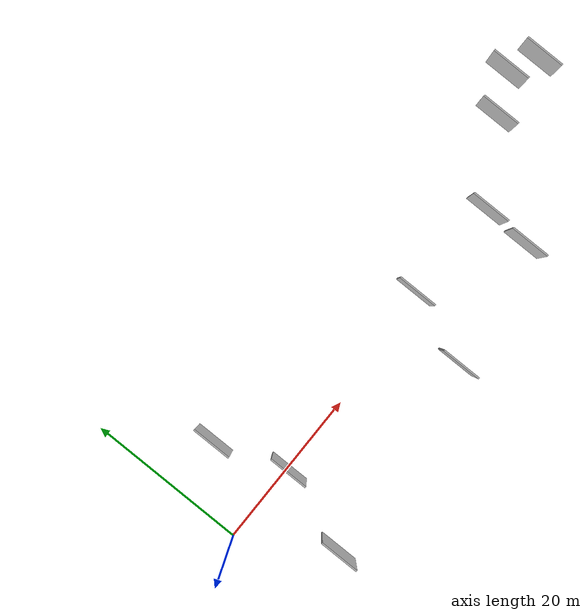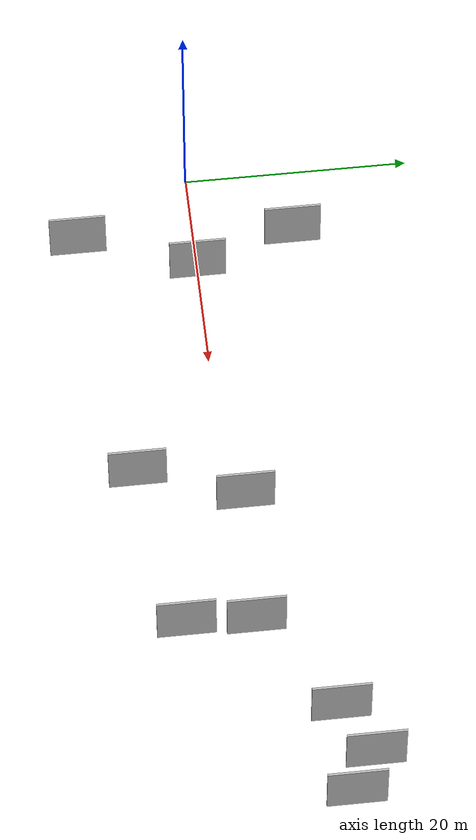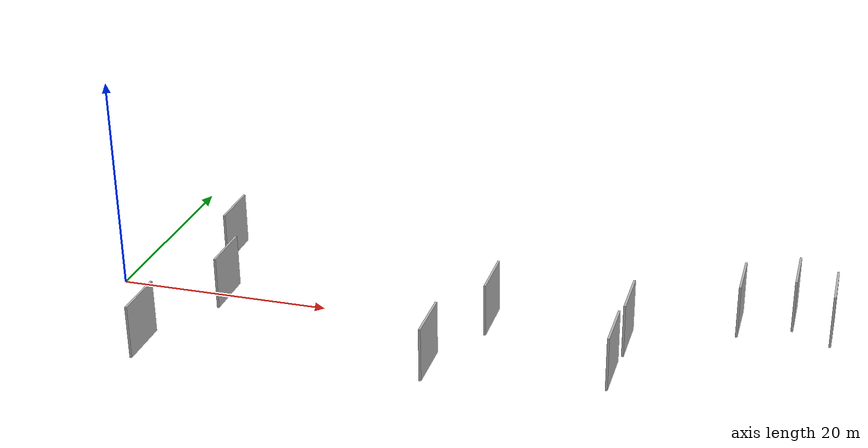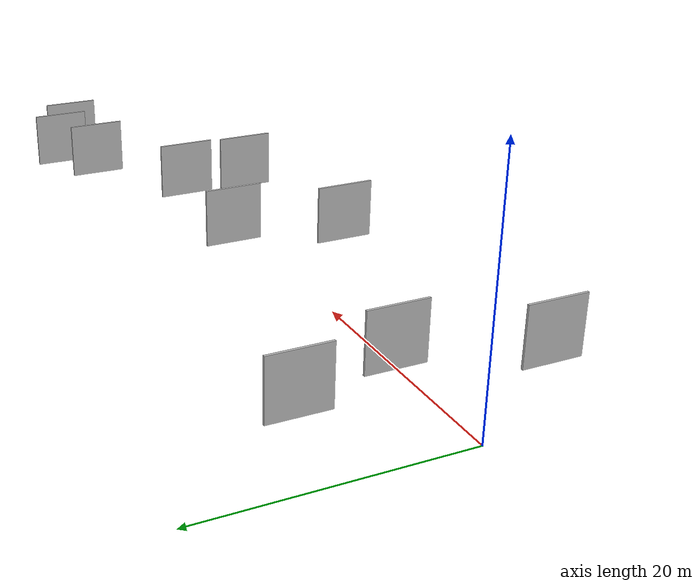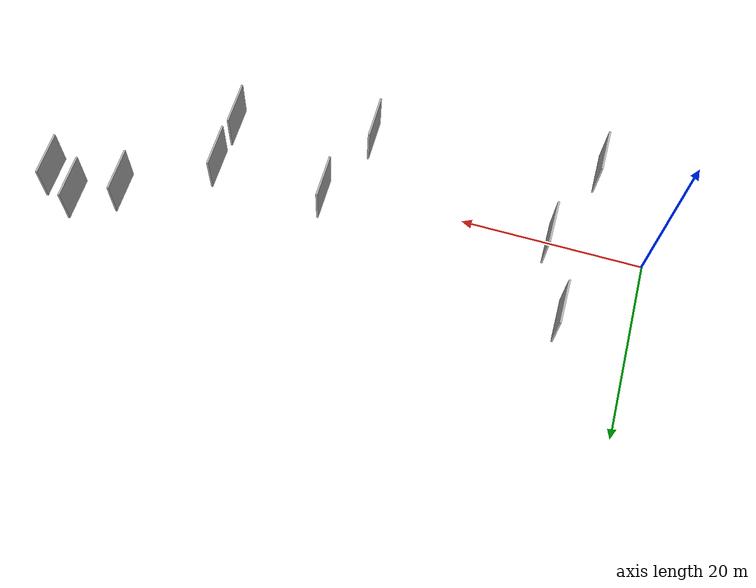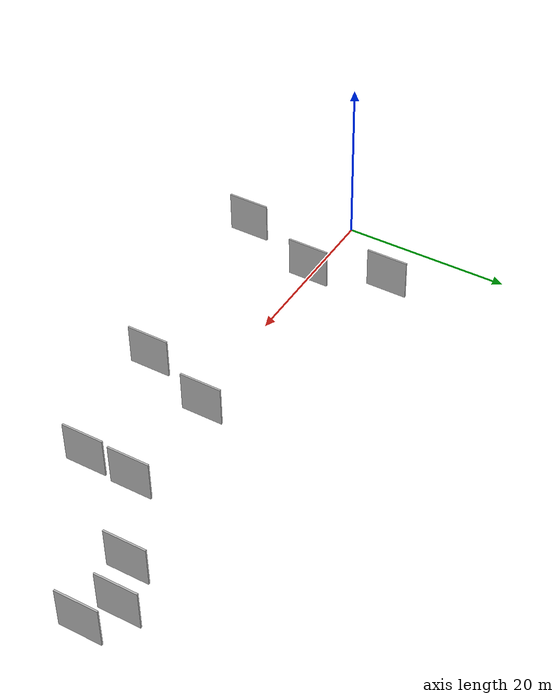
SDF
<sdf version="1.6">
 <world name="default">
  <scene>
   <sky><clouds><speed>12</speed></clouds></sky>
   <ambient>0.4 0.4 0.4 1</ambient>
   <background>0.7 0.7 0.7 1</background>
   <shadows>1</shadows>
  </scene>
  <gravity>0 0 -9.8066</gravity>
  <magnetic_field>6e-06 2.3e-05 -4.2e-05</magnetic_field>
  <physics default="0" name="default_physics" type="ode">
   <ode>
    <solver>
     <type>quick</type>
     <iters>10</iters>
     <sor>1.0</sor>
     <use_dynamic_moi_rescaling>0</use_dynamic_moi_rescaling>
    </solver>
    <constraints>
     <cfm>0</cfm>
     <erp>0.2</erp>
     <contact_max_correcting_vel>100</contact_max_correcting_vel>
     <contact_surface_layer>0.001</contact_surface_layer>
    </constraints>
   </ode>
   <max_step_size>0.004</max_step_size>
   <real_time_factor>1</real_time_factor>
   <real_time_update_rate>250</real_time_update_rate>
  </physics>
  <light name="sun" type="directional">
   <pose>0 0 10 0 0 0</pose>
   <diffuse>0.8 0.8 0.8 1</diffuse>
   <specular>0.2 0.2 0.2 1</specular>
   <attenuation>
    <range>1000</range>
    <constant>0.9</constant>
    <linear>0.01</linear>
    <quadratic>0.001</quadratic>
   </attenuation>
   <direction>-0.5 0.1 -0.9</direction>
  </light>
  <model name="grey_wall_1">
   <static>1</static>
   <pose>32.1982 -7.3972 0.0 0.000000 0.000000 1.570796</pose>
   <link name="link">
    <pose>0 0 2.50 0 0 0</pose>
    <collision name="collision"><geometry><box><size>5.00 0.2 5.00</size></box></geometry></collision>
    <visual name="visual">
     <cast_shadows>0</cast_shadows>
     <geometry><box><size>5.00 0.2 5.00</size></box></geometry>
     <material>
      <script>
       <uri>model://HANNAS_wall/materials/scripts</uri>
       <uri>model://HANNAS_wall/materials/textures</uri>
       <name>vrc/HANNAS_wall</name>
      </script>
     </material>
    </visual>
   </link>
  </model>
  <model name="grey_wall_2">
   <static>1</static>
   <pose>65.3441 7.3840 0.0 0.000000 0.000000 1.570796</pose>
   <link name="link">
    <pose>0 0 2.50 0 0 0</pose>
    <collision name="collision"><geometry><box><size>5.00 0.2 5.00</size></box></geometry></collision>
    <visual name="visual">
     <cast_shadows>0</cast_shadows>
     <geometry><box><size>5.00 0.2 5.00</size></box></geometry>
     <material>
      <script>
       <uri>model://HANNAS_wall/materials/scripts</uri>
       <uri>model://HANNAS_wall/materials/textures</uri>
       <name>vrc/HANNAS_wall</name>
      </script>
     </material>
    </visual>
   </link>
  </model>
  <model name="grey_wall_3">
   <static>1</static>
   <pose>47.7189 -4.7763 0.0 0.000000 0.000000 1.570796</pose>
   <link name="link">
    <pose>0 0 2.50 0 0 0</pose>
    <collision name="collision"><geometry><box><size>5.00 0.2 5.00</size></box></geometry></collision>
    <visual name="visual">
     <cast_shadows>0</cast_shadows>
     <geometry><box><size>5.00 0.2 5.00</size></box></geometry>
     <material>
      <script>
       <uri>model://HANNAS_wall/materials/scripts</uri>
       <uri>model://HANNAS_wall/materials/textures</uri>
       <name>vrc/HANNAS_wall</name>
      </script>
     </material>
    </visual>
   </link>
  </model>
  <model name="grey_wall_4">
   <static>1</static>
   <pose>6.8140 -10.3158 0.0 0.000000 0.000000 1.570796</pose>
   <link name="link">
    <pose>0 0 2.50 0 0 0</pose>
    <collision name="collision"><geometry><box><size>5.00 0.2 5.00</size></box></geometry></collision>
    <visual name="visual">
     <cast_shadows>0</cast_shadows>
     <geometry><box><size>5.00 0.2 5.00</size></box></geometry>
     <material>
      <script>
       <uri>model://HANNAS_wall/materials/scripts</uri>
       <uri>model://HANNAS_wall/materials/textures</uri>
       <name>vrc/HANNAS_wall</name>
      </script>
     </material>
    </visual>
   </link>
  </model>
  <model name="grey_wall_5">
   <static>1</static>
   <pose>48.0214 1.0848 0.0 0.000000 0.000000 1.570796</pose>
   <link name="link">
    <pose>0 0 2.50 0 0 0</pose>
    <collision name="collision"><geometry><box><size>5.00 0.2 5.00</size></box></geometry></collision>
    <visual name="visual">
     <cast_shadows>0</cast_shadows>
     <geometry><box><size>5.00 0.2 5.00</size></box></geometry>
     <material>
      <script>
       <uri>model://HANNAS_wall/materials/scripts</uri>
       <uri>model://HANNAS_wall/materials/textures</uri>
       <name>vrc/HANNAS_wall</name>
      </script>
     </material>
    </visual>
   </link>
  </model>
  <model name="grey_wall_6">
   <static>1</static>
   <pose>35.4953 1.5428 0.0 0.000000 0.000000 1.570796</pose>
   <link name="link">
    <pose>0 0 2.50 0 0 0</pose>
    <collision name="collision"><geometry><box><size>5.00 0.2 5.00</size></box></geometry></collision>
    <visual name="visual">
     <cast_shadows>0</cast_shadows>
     <geometry><box><size>5.00 0.2 5.00</size></box></geometry>
     <material>
      <script>
       <uri>model://HANNAS_wall/materials/scripts</uri>
       <uri>model://HANNAS_wall/materials/textures</uri>
       <name>vrc/HANNAS_wall</name>
      </script>
     </material>
    </visual>
   </link>
  </model>
  <model name="grey_wall_7">
   <static>1</static>
   <pose>57.1895 7.0918 0.0 0.000000 0.000000 1.570796</pose>
   <link name="link">
    <pose>0 0 2.50 0 0 0</pose>
    <collision name="collision"><geometry><box><size>5.00 0.2 5.00</size></box></geometry></collision>
    <visual name="visual">
     <cast_shadows>0</cast_shadows>
     <geometry><box><size>5.00 0.2 5.00</size></box></geometry>
     <material>
      <script>
       <uri>model://HANNAS_wall/materials/scripts</uri>
       <uri>model://HANNAS_wall/materials/textures</uri>
       <name>vrc/HANNAS_wall</name>
      </script>
     </material>
    </visual>
   </link>
  </model>
  <model name="grey_wall_8">
   <static>1</static>
   <pose>10.5177 0.0256 0.0 0.000000 0.000000 1.570796</pose>
   <link name="link">
    <pose>0 0 2.50 0 0 0</pose>
    <collision name="collision"><geometry><box><size>5.00 0.2 5.00</size></box></geometry></collision>
    <visual name="visual">
     <cast_shadows>0</cast_shadows>
     <geometry><box><size>5.00 0.2 5.00</size></box></geometry>
     <material>
      <script>
       <uri>model://HANNAS_wall/materials/scripts</uri>
       <uri>model://HANNAS_wall/materials/textures</uri>
       <name>vrc/HANNAS_wall</name>
      </script>
     </material>
    </visual>
   </link>
  </model>
  <model name="grey_wall_9">
   <static>1</static>
   <pose>7.6743 8.8062 0.0 0.000000 0.000000 1.570796</pose>
   <link name="link">
    <pose>0 0 2.50 0 0 0</pose>
    <collision name="collision"><geometry><box><size>5.00 0.2 5.00</size></box></geometry></collision>
    <visual name="visual">
     <cast_shadows>0</cast_shadows>
     <geometry><box><size>5.00 0.2 5.00</size></box></geometry>
     <material>
      <script>
       <uri>model://HANNAS_wall/materials/scripts</uri>
       <uri>model://HANNAS_wall/materials/textures</uri>
       <name>vrc/HANNAS_wall</name>
      </script>
     </material>
    </visual>
   </link>
  </model>
  <model name="grey_wall_10">
   <static>1</static>
   <pose>61.8782 9.3883 0.0 0.000000 0.000000 1.570796</pose>
   <link name="link">
    <pose>0 0 2.50 0 0 0</pose>
    <collision name="collision"><geometry><box><size>5.00 0.2 5.00</size></box></geometry></collision>
    <visual name="visual">
     <cast_shadows>0</cast_shadows>
     <geometry><box><size>5.00 0.2 5.00</size></box></geometry>
     <material>
      <script>
       <uri>model://HANNAS_wall/materials/scripts</uri>
       <uri>model://HANNAS_wall/materials/textures</uri>
       <name>vrc/HANNAS_wall</name>
      </script>
     </material>
    </visual>
   </link>
  </model>
 </world>
</sdf>
